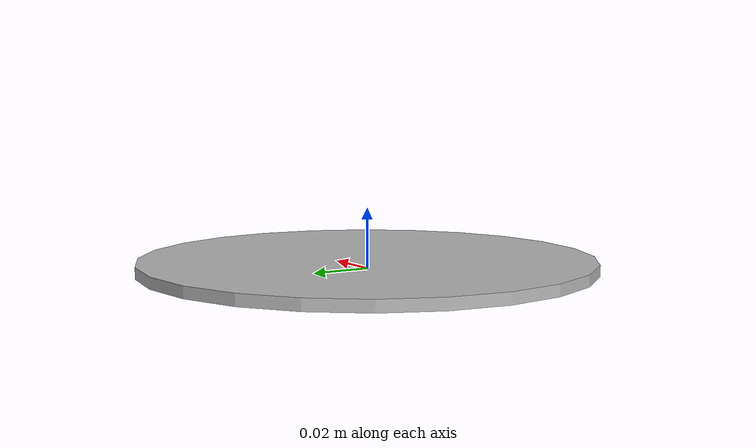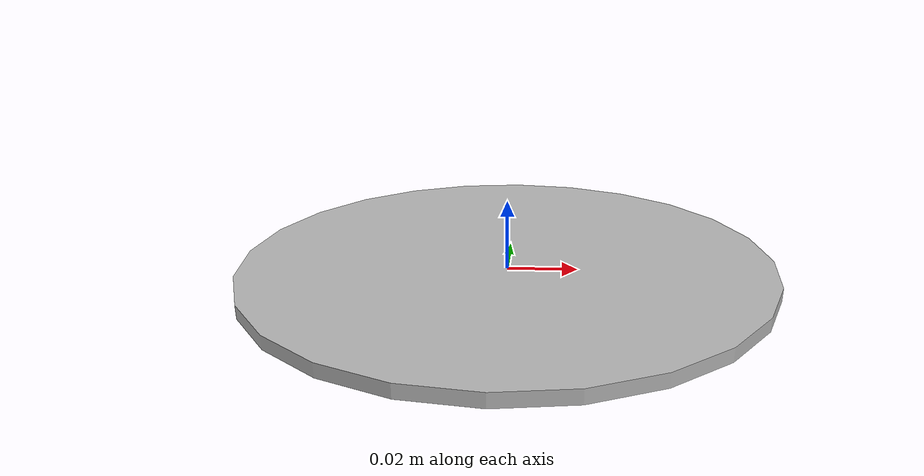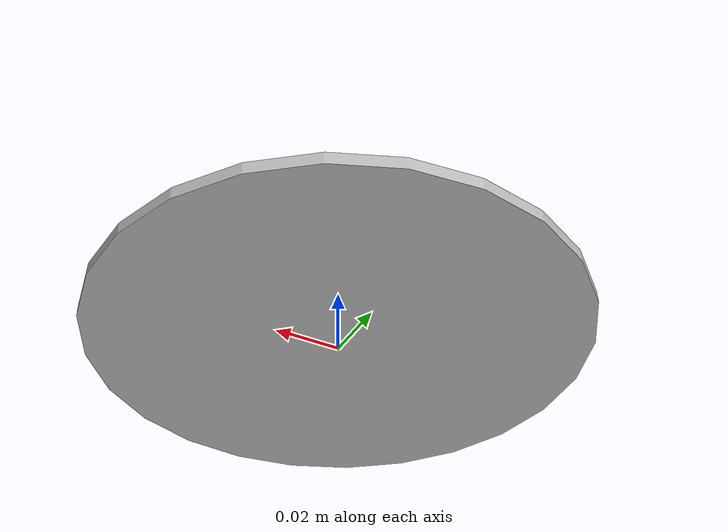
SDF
<?xml version="1.0"?>
<sdf version="1.5">
    <model name="figure_circle_green">
        <static>true</static>
        <link name="link">
            <collision name="collision1">
                <pose>0 0 0 0 0 0</pose>
                <geometry>
                    <mesh>
                        <uri>model://figure_circle_green/meshes/figure_circle_green.dae</uri>
                        <scale>0.15 0.15 0.15</scale>
                    </mesh>
                </geometry>
            </collision>
            <visual name="visual1">
                <pose>0 0 0 0 0 0</pose>
                <geometry>
                    <mesh>
                        <uri>model://figure_circle_green/meshes/figure_circle_green.dae</uri>
                        <scale>0.15 0.15 0.15</scale>
                    </mesh>
                </geometry>
            </visual>
        </link>
    </model>
</sdf>
